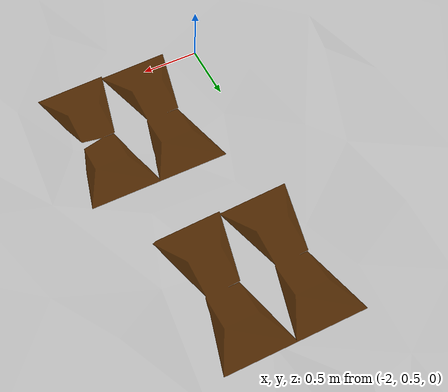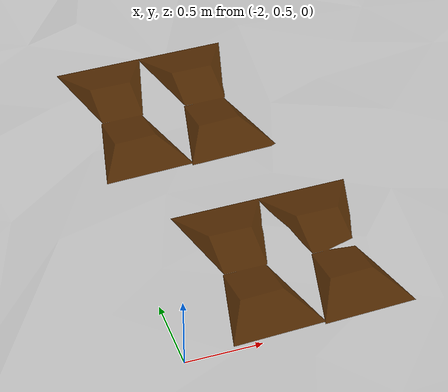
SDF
<sdf version="1.7">
 <world name="default">
  <light name="sun" type="directional">
   <pose>0 0 10 0 -0 0</pose>
   <diffuse>0.8 0.8 0.8 1</diffuse>
   <specular>0.2 0.2 0.2 1</specular>
   <attenuation>
    <range>1000</range>
    <constant>0.9</constant>
    <linear>0.01</linear>
    <quadratic>0.001</quadratic>
   </attenuation>
   <direction>-0.5 0.1 -0.9</direction>
   <spot><inner_angle>0</inner_angle><outer_angle>0</outer_angle><falloff>0</falloff></spot>
  </light>
  <model name="ground_plane">
   <static>1</static>
   <link name="link">
    <collision name="collision">
     <geometry><plane><normal>0 0 1</normal><size>100 100</size></plane></geometry>
     <surface><friction><ode><mu>100</mu><mu2>50</mu2></ode></friction></surface>
    </collision>
    <visual name="visual">
     <cast_shadows>0</cast_shadows>
     <geometry><plane><normal>0 0 1</normal><size>100 100</size></plane></geometry>
     <material>
      <script><uri>file://media/materials/scripts/gazebo.material</uri><name>Gazebo/Grey</name></script>
     </material>
    </visual>
   </link>
  </model>
  <gravity>0 0 -9.8</gravity>
  <magnetic_field>6e-06 2.3e-05 -4.2e-05</magnetic_field>
  <atmosphere type="adiabatic"/>
  <physics type="ode">
   <max_step_size>0.001</max_step_size>
   <real_time_factor>1</real_time_factor>
   <real_time_update_rate>1000</real_time_update_rate>
  </physics>
  <scene><ambient>0.4 0.4 0.4 1</ambient><background>0.7 0.7 0.7 1</background><shadows>1</shadows></scene>
  <audio><device>default</device></audio>
  <spherical_coordinates>
   <surface_model>EARTH_WGS84</surface_model>
   <latitude_deg>0</latitude_deg>
   <longitude_deg>0</longitude_deg>
   <elevation>0</elevation>
   <heading_deg>0</heading_deg>
  </spherical_coordinates>
  <model name="rampa">
   <link name="link_0">
    <inertial>
     <mass>1</mass>
     <inertia>
      <ixx>0.166667</ixx>
      <ixy>0</ixy>
      <ixz>0</ixz>
      <iyy>0.166667</iyy>
      <iyz>0</iyz>
      <izz>0.166667</izz>
     </inertia>
    </inertial>
    <visual name="visual">
     <geometry>
      <mesh>
       <uri>/home/teozeta/ros2_ws/src/grasslammer2_description/meshes/rampa.dae</uri>
       <scale>1 1 1</scale>
      </mesh>
     </geometry>
     <material>
      <lighting>0</lighting>
      <script><uri>file://media/materials/scripts/gazebo.material</uri><name>Gazebo/Grey</name></script>
      <shader type="pixel"><normal_map>__default__</normal_map></shader>
      <emissive>0.1 0.0 0.1 1</emissive>
      <ambient>0.5 0.25 0.03 0.1</ambient>
      <diffuse>0.3 0.15 0.0 1</diffuse>
      <specular>0.2 0.2 0.2 64</specular>
     </material>
    </visual>
    <collision name="collision">
     <geometry>
      <mesh>
       <uri>/home/teozeta/ros2_ws/src/grasslammer2_description/meshes/rampa.dae</uri>
       <scale>1 1 1</scale>
      </mesh>
     </geometry>
     <surface>
      <friction>
       <ode><mu>1</mu><mu2>1</mu2><fdir1>0 0 0</fdir1><slip1>0</slip1><slip2>0</slip2></ode>
       <torsional>
        <coefficient>1</coefficient>
        <patch_radius>0</patch_radius>
        <surface_radius>0</surface_radius>
        <use_patch_radius>1</use_patch_radius>
        <ode><slip>0</slip></ode>
       </torsional>
      </friction>
      <bounce><restitution_coefficient>0</restitution_coefficient><threshold>1e+06</threshold></bounce>
      <contact>
       <collide_without_contact>0</collide_without_contact>
       <collide_without_contact_bitmask>1</collide_without_contact_bitmask>
       <collide_bitmask>1</collide_bitmask>
       <ode>
        <soft_cfm>0</soft_cfm>
        <soft_erp>0.2</soft_erp>
        <kp>1e+13</kp>
        <kd>1</kd>
        <max_vel>0.01</max_vel>
        <min_depth>0</min_depth>
       </ode>
       <bullet>
        <split_impulse>1</split_impulse>
        <split_impulse_penetration_threshold>-0.01</split_impulse_penetration_threshold>
        <soft_cfm>0</soft_cfm>
        <soft_erp>0.2</soft_erp>
        <kp>1e+13</kp>
        <kd>1</kd>
       </bullet>
      </contact>
     </surface>
    </collision>
   </link>
   <static>1</static>
   <pose>-1.48069 1.39677 -0.192979 0 -0 0</pose>
  </model>
  <model name="rampa_0">
   <link name="link_0">
    <inertial>
     <mass>1</mass>
     <inertia>
      <ixx>0.166667</ixx>
      <ixy>0</ixy>
      <ixz>0</ixz>
      <iyy>0.166667</iyy>
      <iyz>0</iyz>
      <izz>0.166667</izz>
     </inertia>
    </inertial>
    <visual name="visual">
     <geometry>
      <mesh>
       <uri>/home/teozeta/ros2_ws/src/grasslammer2_description/meshes/rampa.dae</uri>
       <scale>1 1 1</scale>
      </mesh>
     </geometry>
     <material>
      <lighting>0</lighting>
      <script><uri>file://media/materials/scripts/gazebo.material</uri><name>Gazebo/Grey</name></script>
      <shader type="pixel"><normal_map>__default__</normal_map></shader>
      <emissive>0.1 0.0 0.1 1</emissive>
      <ambient>0.5 0.25 0.03 0.1</ambient>
      <diffuse>0.3 0.15 0.0 1</diffuse>
      <specular>0.2 0.2 0.2 64</specular>
     </material>
    </visual>
    <collision name="collision">
     <geometry>
      <mesh>
       <uri>/home/teozeta/ros2_ws/src/grasslammer2_description/meshes/rampa.dae</uri>
       <scale>1 1 1</scale>
      </mesh>
     </geometry>
     <surface>
      <friction>
       <ode><mu>1</mu><mu2>1</mu2><fdir1>0 0 0</fdir1><slip1>0</slip1><slip2>0</slip2></ode>
       <torsional>
        <coefficient>1</coefficient>
        <patch_radius>0</patch_radius>
        <surface_radius>0</surface_radius>
        <use_patch_radius>1</use_patch_radius>
        <ode><slip>0</slip></ode>
       </torsional>
      </friction>
      <bounce><restitution_coefficient>0</restitution_coefficient><threshold>1e+06</threshold></bounce>
      <contact>
       <collide_without_contact>0</collide_without_contact>
       <collide_without_contact_bitmask>1</collide_without_contact_bitmask>
       <collide_bitmask>1</collide_bitmask>
       <ode>
        <soft_cfm>0</soft_cfm>
        <soft_erp>0.2</soft_erp>
        <kp>1e+13</kp>
        <kd>1</kd>
        <max_vel>0.01</max_vel>
        <min_depth>0</min_depth>
       </ode>
       <bullet>
        <split_impulse>1</split_impulse>
        <split_impulse_penetration_threshold>-0.01</split_impulse_penetration_threshold>
        <soft_cfm>0</soft_cfm>
        <soft_erp>0.2</soft_erp>
        <kp>1e+13</kp>
        <kd>1</kd>
       </bullet>
      </contact>
     </surface>
    </collision>
   </link>
   <static>1</static>
   <pose>-1.77964 3.06347 -0.198106 0 -0 0</pose>
  </model>
  <model name="custom_terrain">
   <static>1</static>
   <link name="link">
    <collision name="collision">
     <geometry><mesh><uri>model://custom_terrain/meshes/terrain.stl</uri></mesh></geometry>
    </collision>
    <visual name="visual">
     <geometry><mesh><uri>model://custom_terrain/meshes/terrain.stl</uri></mesh></geometry>
     <material>
      <script>
       <uri>model://custom_terrain/materials/scripts</uri>
       <uri>model://custom_terrain/materials/textures</uri>
       <name>custom_terrain/terrain</name>
      </script>
     </material>
    </visual>
   </link>
   <pose>-1.53507 2.74629 0 0 -0 0</pose>
  </model>
 </world>
</sdf>
